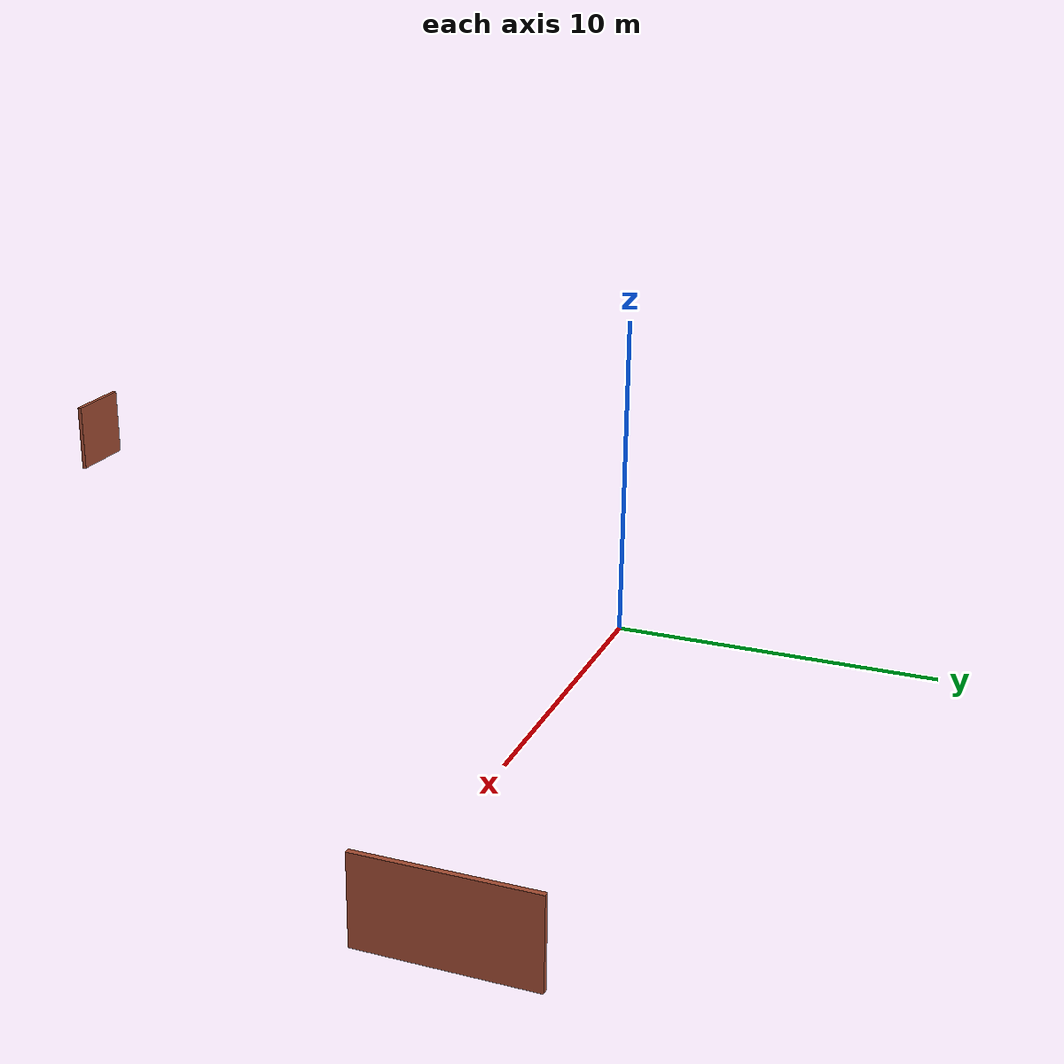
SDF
<?xml version='1.0'?>
<sdf version='1.7'>
  <model name='house'>
    <pose>4.99842 -10.0878 0 0 -0 0</pose>
    <link name='Wall_71'>
      <collision name='Wall_71_Collision'>
        <geometry>
          <box>
            <size>4.75 0.15 2.5</size>
          </box>
        </geometry>
        <pose>0 0 1.25 0 -0 0</pose>
      </collision>
      <visual name='Wall_71_Visual'>
        <pose>0 0 1.25 0 -0 0</pose>
        <geometry>
          <box>
            <size>4.75 0.15 2.5</size>
          </box>
        </geometry>
        <material>
          <script>
            <uri>file://media/materials/scripts/gazebo.material</uri>
            <name>Gazebo/Bricks</name>
          </script>
          <ambient>1 1 1 1</ambient>
        </material>
        <meta>
          <layer>0</layer>
        </meta>
      </visual>
      <pose>14.4369 12.4091 0 0 -0 -1.5708</pose>
    </link>
    <link name='Wall_74'>
      <collision name='Wall_74_Collision'>
        <geometry>
          <box>
            <size>2.5 0.15 2.5</size>
          </box>
        </geometry>
        <pose>0 0 1.25 0 -0 0</pose>
      </collision>
      <visual name='Wall_74_Visual'>
        <pose>0 0 1.25 0 -0 0</pose>
        <geometry>
          <box>
            <size>2.5 0.15 2.5</size>
          </box>
        </geometry>
        <material>
          <script>
            <uri>file://media/materials/scripts/gazebo.material</uri>
            <name>Gazebo/Bricks</name>
          </script>
          <ambient>1 1 1 1</ambient>
        </material>
        <meta>
          <layer>0</layer>
        </meta>
      </visual>
      <pose>-13.2619 -14.7091 0 0 -0 0</pose>
    </link>
    <static>1</static>
  </model>
</sdf>
